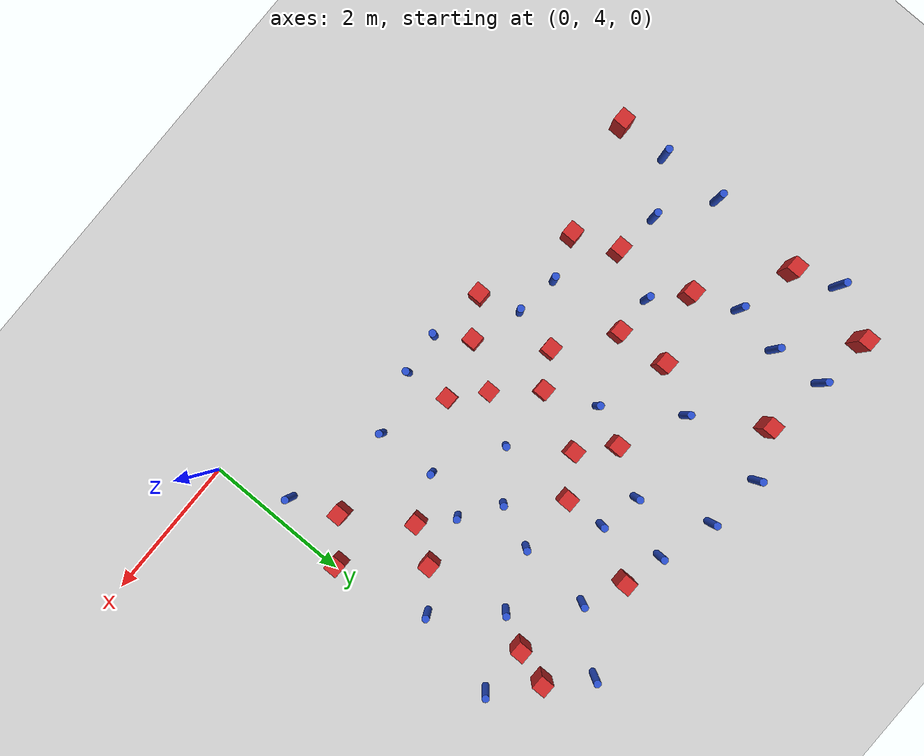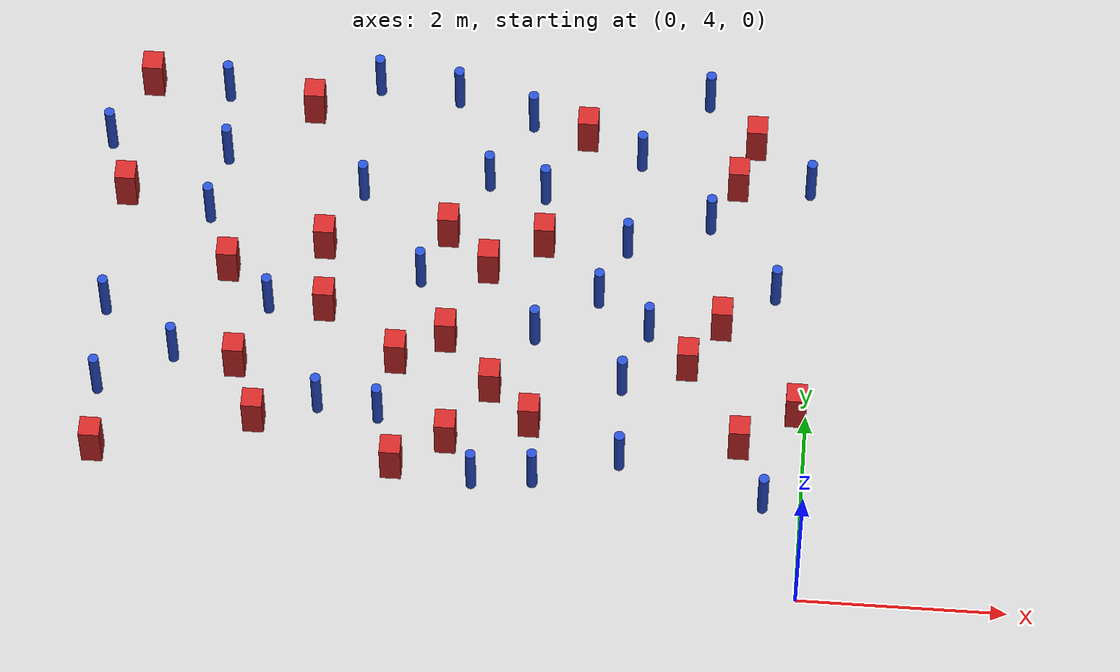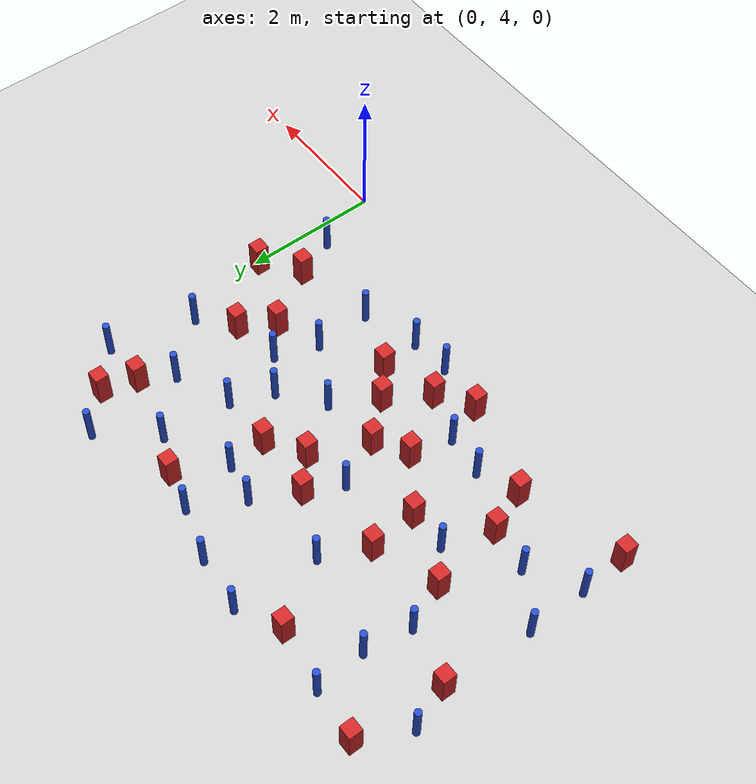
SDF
<sdf version="1.6">
 <world name="default">
  <model name="ground_plane">
   <static>1</static>
   <link name="link">
    <collision name="collision">
     <geometry><plane><normal>0 0 1</normal><size>100 100</size></plane></geometry>
     <surface><friction><ode><mu>100</mu><mu2>50</mu2></ode></friction></surface>
    </collision>
    <visual name="visual">
     <cast_shadows>0</cast_shadows>
     <geometry><plane><normal>0 0 1</normal><size>100 100</size></plane></geometry>
     <material>
      <ambient>1.0 1.0 1.0 1.0</ambient>
      <diffuse>0.8 0.8 0.8 1.0</diffuse>
      <specular>0.01 0.01 0.01 1.000000</specular>
     </material>
    </visual>
   </link>
  </model>
  <model name="pole_obstacle0">
   <static>true</static>
   <pose>-1.75917018669 5.33562779901 2.88873142074e-08 -9.90536689852e-09 4.60219948989e-07 -1.2096599496e-07</pose>
   <link name="link">
    <pose>0 0 0.3 0 -0 0</pose>
    <inertial>
     <mass>1</mass>
     <inertia><ixx>0.145833</ixx><ixy>0</ixy><ixz>0</ixz><iyy>0.145833</iyy><iyz>0</iyz><izz>0.125</izz></inertia>
    </inertial>
    <collision name="collision">
     <geometry><cylinder><radius>0.05</radius><length>.6</length></cylinder></geometry>
    </collision>
    <visual name="visual">
     <geometry><cylinder><radius>0.05</radius><length>.6</length></cylinder></geometry>
     <material>
      <script><name>Gazebo/Blue</name><uri>file://media/materials/scripts/gazebo.material</uri></script>
     </material>
    </visual>
   </link>
  </model>
  <model name="pole_obstacle1">
   <static>true</static>
   <pose>-4.70056590658 5.76526155883 2.88873142074e-08 -9.90536690842e-09 4.60219948965e-07 -1.20965994976e-07</pose>
   <link name="link">
    <pose>0 0 0.3 0 -0 0</pose>
    <inertial>
     <mass>1</mass>
     <inertia><ixx>0.145833</ixx><ixy>0</ixy><ixz>0</ixz><iyy>0.145833</iyy><iyz>0</iyz><izz>0.125</izz></inertia>
    </inertial>
    <collision name="collision">
     <geometry><cylinder><radius>0.05</radius><length>.6</length></cylinder></geometry>
    </collision>
    <visual name="visual">
     <geometry><cylinder><radius>0.05</radius><length>.6</length></cylinder></geometry>
     <material>
      <script><name>Gazebo/Blue</name><uri>file://media/materials/scripts/gazebo.material</uri></script>
     </material>
    </visual>
   </link>
  </model>
  <model name="pole_obstacle2">
   <static>true</static>
   <pose>-4.45726668055 8.1890683616 2.88873142074e-08 -9.9053668967e-09 4.60219948993e-07 -1.20965994957e-07</pose>
   <link name="link">
    <pose>0 0 0.3 0 -0 0</pose>
    <inertial>
     <mass>1</mass>
     <inertia><ixx>0.145833</ixx><ixy>0</ixy><ixz>0</ixz><iyy>0.145833</iyy><iyz>0</iyz><izz>0.125</izz></inertia>
    </inertial>
    <collision name="collision">
     <geometry><cylinder><radius>0.05</radius><length>.6</length></cylinder></geometry>
    </collision>
    <visual name="visual">
     <geometry><cylinder><radius>0.05</radius><length>.6</length></cylinder></geometry>
     <material>
      <script><name>Gazebo/Blue</name><uri>file://media/materials/scripts/gazebo.material</uri></script>
     </material>
    </visual>
   </link>
  </model>
  <model name="square_post_obstacle7">
   <static>true</static>
   <pose>-2.65024119042 5.69490103265 8.22691968438e-08 7.2212513382e-06 -7.54495500217e-07 2.29674213826e-05</pose>
   <link name="link">
    <pose>0 0 0.25 0 -0 0</pose>
    <inertial>
     <mass>100</mass>
     <inertia>
      <ixx>0.166667</ixx>
      <ixy>0</ixy>
      <ixz>0</ixz>
      <iyy>0.166667</iyy>
      <iyz>0</iyz>
      <izz>0.166667</izz>
     </inertia>
    </inertial>
    <collision name="collision"><geometry><box><size>.2 .2 .5</size></box></geometry></collision>
    <visual name="visual">
     <geometry><box><size>.2 .2 .5</size></box></geometry>
     <material>
      <script><name>Gazebo/Red</name><uri>file://media/materials/scripts/gazebo.material</uri></script>
     </material>
    </visual>
   </link>
  </model>
  <model name="square_post_obstacle9">
   <static>true</static>
   <pose>-4.78377792327 7.54915396914 8.22691968438e-08 7.22125133819e-06 -7.54495500217e-07 2.29674213826e-05</pose>
   <link name="link">
    <pose>0 0 0.25 0 -0 0</pose>
    <inertial>
     <mass>100</mass>
     <inertia>
      <ixx>0.166667</ixx>
      <ixy>0</ixy>
      <ixz>0</ixz>
      <iyy>0.166667</iyy>
      <iyz>0</iyz>
      <izz>0.166667</izz>
     </inertia>
    </inertial>
    <collision name="collision"><geometry><box><size>.2 .2 .5</size></box></geometry></collision>
    <visual name="visual">
     <geometry><box><size>.2 .2 .5</size></box></geometry>
     <material>
      <script><name>Gazebo/Red</name><uri>file://media/materials/scripts/gazebo.material</uri></script>
     </material>
    </visual>
   </link>
  </model>
  <model name="square_post_obstacle18">
   <static>true</static>
   <pose>-0.626363317901 5.59082554774 8.22691968438e-08 7.2212513382e-06 -7.54495500217e-07 2.29674213826e-05</pose>
   <link name="link">
    <pose>0 0 0.25 0 -0 0</pose>
    <inertial>
     <mass>100</mass>
     <inertia>
      <ixx>0.166667</ixx>
      <ixy>0</ixy>
      <ixz>0</ixz>
      <iyy>0.166667</iyy>
      <iyz>0</iyz>
      <izz>0.166667</izz>
     </inertia>
    </inertial>
    <collision name="collision"><geometry><box><size>.2 .2 .5</size></box></geometry></collision>
    <visual name="visual">
     <geometry><box><size>.2 .2 .5</size></box></geometry>
     <material>
      <script><name>Gazebo/Red</name><uri>file://media/materials/scripts/gazebo.material</uri></script>
     </material>
    </visual>
   </link>
  </model>
  <model name="square_post_obstacle23">
   <static>true</static>
   <pose>-3.98644663042 6.30726786794 8.22691968438e-08 7.2212513382e-06 -7.54495500217e-07 2.29674213826e-05</pose>
   <link name="link">
    <pose>0 0 0.25 0 -0 0</pose>
    <inertial>
     <mass>100</mass>
     <inertia>
      <ixx>0.166667</ixx>
      <ixy>0</ixy>
      <ixz>0</ixz>
      <iyy>0.166667</iyy>
      <iyz>0</iyz>
      <izz>0.166667</izz>
     </inertia>
    </inertial>
    <collision name="collision"><geometry><box><size>.2 .2 .5</size></box></geometry></collision>
    <visual name="visual">
     <geometry><box><size>.2 .2 .5</size></box></geometry>
     <material>
      <script><name>Gazebo/Red</name><uri>file://media/materials/scripts/gazebo.material</uri></script>
     </material>
    </visual>
   </link>
  </model>
  <model name="pole_obstacle32">
   <static>true</static>
   <pose>-6.85099173209 6.71087439909 2.88873142074e-08 -9.90536690842e-09 4.60219948965e-07 -1.20965994976e-07</pose>
   <link name="link">
    <pose>0 0 0.3 0 -0 0</pose>
    <inertial>
     <mass>1</mass>
     <inertia><ixx>0.145833</ixx><ixy>0</ixy><ixz>0</ixz><iyy>0.145833</iyy><iyz>0</iyz><izz>0.125</izz></inertia>
    </inertial>
    <collision name="collision">
     <geometry><cylinder><radius>0.05</radius><length>.6</length></cylinder></geometry>
    </collision>
    <visual name="visual">
     <geometry><cylinder><radius>0.05</radius><length>.6</length></cylinder></geometry>
     <material>
      <script><name>Gazebo/Blue</name><uri>file://media/materials/scripts/gazebo.material</uri></script>
     </material>
    </visual>
   </link>
  </model>
  <model name="pole_obstacle40">
   <static>true</static>
   <pose>-2.07064038214 7.12267521632 2.88873142074e-08 -9.90536689859e-09 4.60219948989e-07 -1.20965994961e-07</pose>
   <link name="link">
    <pose>0 0 0.3 0 -0 0</pose>
    <inertial>
     <mass>1</mass>
     <inertia><ixx>0.145833</ixx><ixy>0</ixy><ixz>0</ixz><iyy>0.145833</iyy><iyz>0</iyz><izz>0.125</izz></inertia>
    </inertial>
    <collision name="collision">
     <geometry><cylinder><radius>0.05</radius><length>.6</length></cylinder></geometry>
    </collision>
    <visual name="visual">
     <geometry><cylinder><radius>0.05</radius><length>.6</length></cylinder></geometry>
     <material>
      <script><name>Gazebo/Blue</name><uri>file://media/materials/scripts/gazebo.material</uri></script>
     </material>
    </visual>
   </link>
  </model>
  <model name="square_post_obstacle35">
   <static>true</static>
   <pose>-2.3001562882 8.96820493098 8.22691968438e-08 7.22125133819e-06 -7.54495500217e-07 2.29674213826e-05</pose>
   <link name="link">
    <pose>0 0 0.25 0 -0 0</pose>
    <inertial>
     <mass>100</mass>
     <inertia>
      <ixx>0.166667</ixx>
      <ixy>0</ixy>
      <ixz>0</ixz>
      <iyy>0.166667</iyy>
      <iyz>0</iyz>
      <izz>0.166667</izz>
     </inertia>
    </inertial>
    <collision name="collision"><geometry><box><size>.2 .2 .5</size></box></geometry></collision>
    <visual name="visual">
     <geometry><box><size>.2 .2 .5</size></box></geometry>
     <material>
      <script><name>Gazebo/Red</name><uri>file://media/materials/scripts/gazebo.material</uri></script>
     </material>
    </visual>
   </link>
  </model>
  <model name="pole_obstacle53">
   <static>true</static>
   <pose>-1.74881986015 8.71842014067 2.88873142074e-08 -9.90536690474e-09 4.60219948974e-07 -1.2096599497e-07</pose>
   <link name="link">
    <pose>0 0 0.3 0 -0 0</pose>
    <inertial>
     <mass>1</mass>
     <inertia><ixx>0.145833</ixx><ixy>0</ixy><ixz>0</ixz><iyy>0.145833</iyy><iyz>0</iyz><izz>0.125</izz></inertia>
    </inertial>
    <collision name="collision">
     <geometry><cylinder><radius>0.05</radius><length>.6</length></cylinder></geometry>
    </collision>
    <visual name="visual">
     <geometry><cylinder><radius>0.05</radius><length>.6</length></cylinder></geometry>
     <material>
      <script><name>Gazebo/Blue</name><uri>file://media/materials/scripts/gazebo.material</uri></script>
     </material>
    </visual>
   </link>
  </model>
  <model name="pole_obstacle60">
   <static>true</static>
   <pose>-4.1091775719 5.69014837534 2.88873142074e-08 -9.90536690842e-09 4.60219948965e-07 -1.20965994976e-07</pose>
   <link name="link">
    <pose>0 0 0.3 0 -0 0</pose>
    <inertial>
     <mass>1</mass>
     <inertia><ixx>0.145833</ixx><ixy>0</ixy><ixz>0</ixz><iyy>0.145833</iyy><iyz>0</iyz><izz>0.125</izz></inertia>
    </inertial>
    <collision name="collision">
     <geometry><cylinder><radius>0.05</radius><length>.6</length></cylinder></geometry>
    </collision>
    <visual name="visual">
     <geometry><cylinder><radius>0.05</radius><length>.6</length></cylinder></geometry>
     <material>
      <script><name>Gazebo/Blue</name><uri>file://media/materials/scripts/gazebo.material</uri></script>
     </material>
    </visual>
   </link>
  </model>
  <model name="square_post_obstacle46">
   <static>true</static>
   <pose>-0.0986243503936 5.98123271187 8.22691968438e-08 7.22125133819e-06 -7.54495500217e-07 2.29674213826e-05</pose>
   <link name="link">
    <pose>0 0 0.25 0 -0 0</pose>
    <inertial>
     <mass>100</mass>
     <inertia>
      <ixx>0.166667</ixx>
      <ixy>0</ixy>
      <ixz>0</ixz>
      <iyy>0.166667</iyy>
      <iyz>0</iyz>
      <izz>0.166667</izz>
     </inertia>
    </inertial>
    <collision name="collision"><geometry><box><size>.2 .2 .5</size></box></geometry></collision>
    <visual name="visual">
     <geometry><box><size>.2 .2 .5</size></box></geometry>
     <material>
      <script><name>Gazebo/Red</name><uri>file://media/materials/scripts/gazebo.material</uri></script>
     </material>
    </visual>
   </link>
  </model>
  <model name="square_post_obstacle49">
   <static>true</static>
   <pose>-5.29426202228 5.56522409303 8.22691968438e-08 7.22125133819e-06 -7.54495500217e-07 2.29674213826e-05</pose>
   <link name="link">
    <pose>0 0 0.25 0 -0 0</pose>
    <inertial>
     <mass>100</mass>
     <inertia>
      <ixx>0.166667</ixx>
      <ixy>0</ixy>
      <ixz>0</ixz>
      <iyy>0.166667</iyy>
      <iyz>0</iyz>
      <izz>0.166667</izz>
     </inertia>
    </inertial>
    <collision name="collision"><geometry><box><size>.2 .2 .5</size></box></geometry></collision>
    <visual name="visual">
     <geometry><box><size>.2 .2 .5</size></box></geometry>
     <material>
      <script><name>Gazebo/Red</name><uri>file://media/materials/scripts/gazebo.material</uri></script>
     </material>
    </visual>
   </link>
  </model>
  <model name="square_post_obstacle55">
   <static>true</static>
   <pose>-0.863269764845 6.8932168199 8.22691968438e-08 7.2212513382e-06 -7.54495500217e-07 2.29674213826e-05</pose>
   <link name="link">
    <pose>0 0 0.25 0 -0 0</pose>
    <inertial>
     <mass>100</mass>
     <inertia>
      <ixx>0.166667</ixx>
      <ixy>0</ixy>
      <ixz>0</ixz>
      <iyy>0.166667</iyy>
      <iyz>0</iyz>
      <izz>0.166667</izz>
     </inertia>
    </inertial>
    <collision name="collision"><geometry><box><size>.2 .2 .5</size></box></geometry></collision>
    <visual name="visual">
     <geometry><box><size>.2 .2 .5</size></box></geometry>
     <material>
      <script><name>Gazebo/Red</name><uri>file://media/materials/scripts/gazebo.material</uri></script>
     </material>
    </visual>
   </link>
  </model>
  <model name="pole_obstacle78">
   <static>true</static>
   <pose>-0.0754300898503 8.49925964119 2.88873142074e-08 -9.90536691075e-09 4.6021994896e-07 -1.2096599498e-07</pose>
   <link name="link">
    <pose>0 0 0.3 0 -0 0</pose>
    <inertial>
     <mass>1</mass>
     <inertia><ixx>0.145833</ixx><ixy>0</ixy><ixz>0</ixz><iyy>0.145833</iyy><iyz>0</iyz><izz>0.125</izz></inertia>
    </inertial>
    <collision name="collision">
     <geometry><cylinder><radius>0.05</radius><length>.6</length></cylinder></geometry>
    </collision>
    <visual name="visual">
     <geometry><cylinder><radius>0.05</radius><length>.6</length></cylinder></geometry>
     <material>
      <script><name>Gazebo/Blue</name><uri>file://media/materials/scripts/gazebo.material</uri></script>
     </material>
    </visual>
   </link>
  </model>
  <model name="pole_obstacle79">
   <static>true</static>
   <pose>-6.84055498075 5.82725515153 2.88873142074e-08 -9.90536690842e-09 4.60219948965e-07 -1.20965994976e-07</pose>
   <link name="link">
    <pose>0 0 0.3 0 -0 0</pose>
    <inertial>
     <mass>1</mass>
     <inertia><ixx>0.145833</ixx><ixy>0</ixy><ixz>0</ixz><iyy>0.145833</iyy><iyz>0</iyz><izz>0.125</izz></inertia>
    </inertial>
    <collision name="collision">
     <geometry><cylinder><radius>0.05</radius><length>.6</length></cylinder></geometry>
    </collision>
    <visual name="visual">
     <geometry><cylinder><radius>0.05</radius><length>.6</length></cylinder></geometry>
     <material>
      <script><name>Gazebo/Blue</name><uri>file://media/materials/scripts/gazebo.material</uri></script>
     </material>
    </visual>
   </link>
  </model>
  <model name="pole_obstacle85">
   <static>true</static>
   <pose>-3.60326174553 9.3343657157 2.88873142074e-08 -9.9053668994e-09 4.60219948987e-07 -1.20965994963e-07</pose>
   <link name="link">
    <pose>0 0 0.3 0 -0 0</pose>
    <inertial>
     <mass>1</mass>
     <inertia><ixx>0.145833</ixx><ixy>0</ixy><ixz>0</ixz><iyy>0.145833</iyy><iyz>0</iyz><izz>0.125</izz></inertia>
    </inertial>
    <collision name="collision">
     <geometry><cylinder><radius>0.05</radius><length>.6</length></cylinder></geometry>
    </collision>
    <visual name="visual">
     <geometry><cylinder><radius>0.05</radius><length>.6</length></cylinder></geometry>
     <material>
      <script><name>Gazebo/Blue</name><uri>file://media/materials/scripts/gazebo.material</uri></script>
     </material>
    </visual>
   </link>
  </model>
  <model name="square_post_obstacle79">
   <static>true</static>
   <pose>-6.64825434522 9.31912548346 8.22691968438e-08 7.22125133819e-06 -7.54495500217e-07 2.29674213826e-05</pose>
   <link name="link">
    <pose>0 0 0.25 0 -0 0</pose>
    <inertial>
     <mass>100</mass>
     <inertia>
      <ixx>0.166667</ixx>
      <ixy>0</ixy>
      <ixz>0</ixz>
      <iyy>0.166667</iyy>
      <iyz>0</iyz>
      <izz>0.166667</izz>
     </inertia>
    </inertial>
    <collision name="collision"><geometry><box><size>.2 .2 .5</size></box></geometry></collision>
    <visual name="visual">
     <geometry><box><size>.2 .2 .5</size></box></geometry>
     <material>
      <script><name>Gazebo/Red</name><uri>file://media/materials/scripts/gazebo.material</uri></script>
     </material>
    </visual>
   </link>
  </model>
  <model name="pole_obstacle90">
   <static>true</static>
   <pose>-1.78559708975 6.1630757451 2.88873142074e-08 -9.90536689852e-09 4.60219948989e-07 -1.2096599496e-07</pose>
   <link name="link">
    <pose>0 0 0.3 0 -0 0</pose>
    <inertial>
     <mass>1</mass>
     <inertia><ixx>0.145833</ixx><ixy>0</ixy><ixz>0</ixz><iyy>0.145833</iyy><iyz>0</iyz><izz>0.125</izz></inertia>
    </inertial>
    <collision name="collision">
     <geometry><cylinder><radius>0.05</radius><length>.6</length></cylinder></geometry>
    </collision>
    <visual name="visual">
     <geometry><cylinder><radius>0.05</radius><length>.6</length></cylinder></geometry>
     <material>
      <script><name>Gazebo/Blue</name><uri>file://media/materials/scripts/gazebo.material</uri></script>
     </material>
    </visual>
   </link>
  </model>
  <model name="square_post_obstacle87">
   <static>true</static>
   <pose>-0.633665543708 8.97960726958 8.22691968438e-08 7.22125133819e-06 -7.54495500217e-07 2.29674213826e-05</pose>
   <link name="link">
    <pose>0 0 0.25 0 -0 0</pose>
    <inertial>
     <mass>100</mass>
     <inertia>
      <ixx>0.166667</ixx>
      <ixy>0</ixy>
      <ixz>0</ixz>
      <iyy>0.166667</iyy>
      <iyz>0</iyz>
      <izz>0.166667</izz>
     </inertia>
    </inertial>
    <collision name="collision"><geometry><box><size>.2 .2 .5</size></box></geometry></collision>
    <visual name="visual">
     <geometry><box><size>.2 .2 .5</size></box></geometry>
     <material>
      <script><name>Gazebo/Red</name><uri>file://media/materials/scripts/gazebo.material</uri></script>
     </material>
    </visual>
   </link>
  </model>
  <model name="pole_obstacle96">
   <static>true</static>
   <pose>-6.99567342064 8.6171225161 2.88873142074e-08 -9.9053668967e-09 4.60219948993e-07 -1.20965994957e-07</pose>
   <link name="link">
    <pose>0 0 0.3 0 -0 0</pose>
    <inertial>
     <mass>1</mass>
     <inertia><ixx>0.145833</ixx><ixy>0</ixy><ixz>0</ixz><iyy>0.145833</iyy><iyz>0</iyz><izz>0.125</izz></inertia>
    </inertial>
    <collision name="collision">
     <geometry><cylinder><radius>0.05</radius><length>.6</length></cylinder></geometry>
    </collision>
    <visual name="visual">
     <geometry><cylinder><radius>0.05</radius><length>.6</length></cylinder></geometry>
     <material>
      <script><name>Gazebo/Blue</name><uri>file://media/materials/scripts/gazebo.material</uri></script>
     </material>
    </visual>
   </link>
  </model>
  <model name="pole_obstacle109">
   <static>true</static>
   <pose>-3.81880520496 7.24073774275 2.88873142074e-08 -9.90536689859e-09 4.60219948989e-07 -1.20965994961e-07</pose>
   <link name="link">
    <pose>0 0 0.3 0 -0 0</pose>
    <inertial>
     <mass>1</mass>
     <inertia><ixx>0.145833</ixx><ixy>0</ixy><ixz>0</ixz><iyy>0.145833</iyy><iyz>0</iyz><izz>0.125</izz></inertia>
    </inertial>
    <collision name="collision">
     <geometry><cylinder><radius>0.05</radius><length>.6</length></cylinder></geometry>
    </collision>
    <visual name="visual">
     <geometry><cylinder><radius>0.05</radius><length>.6</length></cylinder></geometry>
     <material>
      <script><name>Gazebo/Blue</name><uri>file://media/materials/scripts/gazebo.material</uri></script>
     </material>
    </visual>
   </link>
  </model>
  <model name="square_post_obstacle110">
   <static>true</static>
   <pose>-6.80719498051 5.14169578007 8.22691968438e-08 7.2212513382e-06 -7.54495500217e-07 2.29674213826e-05</pose>
   <link name="link">
    <pose>0 0 0.25 0 -0 0</pose>
    <inertial>
     <mass>100</mass>
     <inertia>
      <ixx>0.166667</ixx>
      <ixy>0</ixy>
      <ixz>0</ixz>
      <iyy>0.166667</iyy>
      <iyz>0</iyz>
      <izz>0.166667</izz>
     </inertia>
    </inertial>
    <collision name="collision"><geometry><box><size>.2 .2 .5</size></box></geometry></collision>
    <visual name="visual">
     <geometry><box><size>.2 .2 .5</size></box></geometry>
     <material>
      <script><name>Gazebo/Red</name><uri>file://media/materials/scripts/gazebo.material</uri></script>
     </material>
    </visual>
   </link>
  </model>
  <model name="pole_obstacle119">
   <static>true</static>
   <pose>-0.357518092427 7.27877928783 2.88873142074e-08 -9.90536689683e-09 4.60219948993e-07 -1.20965994957e-07</pose>
   <link name="link">
    <pose>0 0 0.3 0 -0 0</pose>
    <inertial>
     <mass>1</mass>
     <inertia><ixx>0.145833</ixx><ixy>0</ixy><ixz>0</ixz><iyy>0.145833</iyy><iyz>0</iyz><izz>0.125</izz></inertia>
    </inertial>
    <collision name="collision">
     <geometry><cylinder><radius>0.05</radius><length>.6</length></cylinder></geometry>
    </collision>
    <visual name="visual">
     <geometry><cylinder><radius>0.05</radius><length>.6</length></cylinder></geometry>
     <material>
      <script><name>Gazebo/Blue</name><uri>file://media/materials/scripts/gazebo.material</uri></script>
     </material>
    </visual>
   </link>
  </model>
  <model name="pole_obstacle121">
   <static>true</static>
   <pose>-2.84922909543 9.10311403551 2.88873142074e-08 -9.90536692318e-09 4.6021994893e-07 -1.20965994988e-07</pose>
   <link name="link">
    <pose>0 0 0.3 0 -0 0</pose>
    <inertial>
     <mass>1</mass>
     <inertia><ixx>0.145833</ixx><ixy>0</ixy><ixz>0</ixz><iyy>0.145833</iyy><iyz>0</iyz><izz>0.125</izz></inertia>
    </inertial>
    <collision name="collision">
     <geometry><cylinder><radius>0.05</radius><length>.6</length></cylinder></geometry>
    </collision>
    <visual name="visual">
     <geometry><cylinder><radius>0.05</radius><length>.6</length></cylinder></geometry>
     <material>
      <script><name>Gazebo/Blue</name><uri>file://media/materials/scripts/gazebo.material</uri></script>
     </material>
    </visual>
   </link>
  </model>
  <model name="square_post_obstacle121">
   <static>true</static>
   <pose>-6.77970649811 8.03047137117 8.22691968438e-08 7.22125133819e-06 -7.54495500217e-07 2.29674213826e-05</pose>
   <link name="link">
    <pose>0 0 0.25 0 -0 0</pose>
    <inertial>
     <mass>100</mass>
     <inertia>
      <ixx>0.166667</ixx>
      <ixy>0</ixy>
      <ixz>0</ixz>
      <iyy>0.166667</iyy>
      <iyz>0</iyz>
      <izz>0.166667</izz>
     </inertia>
    </inertial>
    <collision name="collision"><geometry><box><size>.2 .2 .5</size></box></geometry></collision>
    <visual name="visual">
     <geometry><box><size>.2 .2 .5</size></box></geometry>
     <material>
      <script><name>Gazebo/Red</name><uri>file://media/materials/scripts/gazebo.material</uri></script>
     </material>
    </visual>
   </link>
  </model>
  <model name="square_post_obstacle122">
   <static>true</static>
   <pose>-1.1666404802 6.42003865575 8.22691968438e-08 7.2212513382e-06 -7.54495500217e-07 2.29674213826e-05</pose>
   <link name="link">
    <pose>0 0 0.25 0 -0 0</pose>
    <inertial>
     <mass>100</mass>
     <inertia>
      <ixx>0.166667</ixx>
      <ixy>0</ixy>
      <ixz>0</ixz>
      <iyy>0.166667</iyy>
      <iyz>0</iyz>
      <izz>0.166667</izz>
     </inertia>
    </inertial>
    <collision name="collision"><geometry><box><size>.2 .2 .5</size></box></geometry></collision>
    <visual name="visual">
     <geometry><box><size>.2 .2 .5</size></box></geometry>
     <material>
      <script><name>Gazebo/Red</name><uri>file://media/materials/scripts/gazebo.material</uri></script>
     </material>
    </visual>
   </link>
  </model>
  <model name="pole_obstacle128">
   <static>true</static>
   <pose>-1.03221939965 8.03573331753 2.88873142074e-08 -9.90536689707e-09 4.60219948992e-07 -1.20965994958e-07</pose>
   <link name="link">
    <pose>0 0 0.3 0 -0 0</pose>
    <inertial>
     <mass>1</mass>
     <inertia><ixx>0.145833</ixx><ixy>0</ixy><ixz>0</ixz><iyy>0.145833</iyy><iyz>0</iyz><izz>0.125</izz></inertia>
    </inertial>
    <collision name="collision">
     <geometry><cylinder><radius>0.05</radius><length>.6</length></cylinder></geometry>
    </collision>
    <visual name="visual">
     <geometry><cylinder><radius>0.05</radius><length>.6</length></cylinder></geometry>
     <material>
      <script><name>Gazebo/Blue</name><uri>file://media/materials/scripts/gazebo.material</uri></script>
     </material>
    </visual>
   </link>
  </model>
  <model name="square_post_obstacle134">
   <static>true</static>
   <pose>-5.53364760123 6.1608161731 8.22691968438e-08 7.22125133819e-06 -7.54495500217e-07 2.29674213826e-05</pose>
   <link name="link">
    <pose>0 0 0.25 0 -0 0</pose>
    <inertial>
     <mass>100</mass>
     <inertia>
      <ixx>0.166667</ixx>
      <ixy>0</ixy>
      <ixz>0</ixz>
      <iyy>0.166667</iyy>
      <iyz>0</iyz>
      <izz>0.166667</izz>
     </inertia>
    </inertial>
    <collision name="collision"><geometry><box><size>.2 .2 .5</size></box></geometry></collision>
    <visual name="visual">
     <geometry><box><size>.2 .2 .5</size></box></geometry>
     <material>
      <script><name>Gazebo/Red</name><uri>file://media/materials/scripts/gazebo.material</uri></script>
     </material>
    </visual>
   </link>
  </model>
  <model name="square_post_obstacle135">
   <static>true</static>
   <pose>-5.02171168377 9.10797732647 8.22691968438e-08 7.22125133819e-06 -7.54495500217e-07 2.29674213826e-05</pose>
   <link name="link">
    <pose>0 0 0.25 0 -0 0</pose>
    <inertial>
     <mass>100</mass>
     <inertia>
      <ixx>0.166667</ixx>
      <ixy>0</ixy>
      <ixz>0</ixz>
      <iyy>0.166667</iyy>
      <iyz>0</iyz>
      <izz>0.166667</izz>
     </inertia>
    </inertial>
    <collision name="collision"><geometry><box><size>.2 .2 .5</size></box></geometry></collision>
    <visual name="visual">
     <geometry><box><size>.2 .2 .5</size></box></geometry>
     <material>
      <script><name>Gazebo/Red</name><uri>file://media/materials/scripts/gazebo.material</uri></script>
     </material>
    </visual>
   </link>
  </model>
  <model name="pole_obstacle144">
   <static>true</static>
   <pose>-2.57733304015 5.08893887775 2.88873142074e-08 -9.90536689859e-09 4.60219948989e-07 -1.20965994961e-07</pose>
   <link name="link">
    <pose>0 0 0.3 0 -0 0</pose>
    <inertial>
     <mass>1</mass>
     <inertia><ixx>0.145833</ixx><ixy>0</ixy><ixz>0</ixz><iyy>0.145833</iyy><iyz>0</iyz><izz>0.125</izz></inertia>
    </inertial>
    <collision name="collision">
     <geometry><cylinder><radius>0.05</radius><length>.6</length></cylinder></geometry>
    </collision>
    <visual name="visual">
     <geometry><cylinder><radius>0.05</radius><length>.6</length></cylinder></geometry>
     <material>
      <script><name>Gazebo/Blue</name><uri>file://media/materials/scripts/gazebo.material</uri></script>
     </material>
    </visual>
   </link>
  </model>
  <model name="pole_obstacle148">
   <static>true</static>
   <pose>-5.88879627955 9.24784509286 2.88873142074e-08 -9.9053668967e-09 4.60219948993e-07 -1.20965994957e-07</pose>
   <link name="link">
    <pose>0 0 0.3 0 -0 0</pose>
    <inertial>
     <mass>1</mass>
     <inertia><ixx>0.145833</ixx><ixy>0</ixy><ixz>0</ixz><iyy>0.145833</iyy><iyz>0</iyz><izz>0.125</izz></inertia>
    </inertial>
    <collision name="collision">
     <geometry><cylinder><radius>0.05</radius><length>.6</length></cylinder></geometry>
    </collision>
    <visual name="visual">
     <geometry><cylinder><radius>0.05</radius><length>.6</length></cylinder></geometry>
     <material>
      <script><name>Gazebo/Blue</name><uri>file://media/materials/scripts/gazebo.material</uri></script>
     </material>
    </visual>
   </link>
  </model>
  <model name="pole_obstacle151">
   <static>true</static>
   <pose>-1.82883433554 7.70992712427 2.88873142074e-08 -9.90536689852e-09 4.60219948989e-07 -1.2096599496e-07</pose>
   <link name="link">
    <pose>0 0 0.3 0 -0 0</pose>
    <inertial>
     <mass>1</mass>
     <inertia><ixx>0.145833</ixx><ixy>0</ixy><ixz>0</ixz><iyy>0.145833</iyy><iyz>0</iyz><izz>0.125</izz></inertia>
    </inertial>
    <collision name="collision">
     <geometry><cylinder><radius>0.05</radius><length>.6</length></cylinder></geometry>
    </collision>
    <visual name="visual">
     <geometry><cylinder><radius>0.05</radius><length>.6</length></cylinder></geometry>
     <material>
      <script><name>Gazebo/Blue</name><uri>file://media/materials/scripts/gazebo.material</uri></script>
     </material>
    </visual>
   </link>
  </model>
  <model name="square_post_obstacle151">
   <static>true</static>
   <pose>-3.16657237492 7.38236289667 8.22691968438e-08 7.2212513382e-06 -7.54495500217e-07 2.29674213826e-05</pose>
   <link name="link">
    <pose>0 0 0.25 0 -0 0</pose>
    <inertial>
     <mass>100</mass>
     <inertia>
      <ixx>0.166667</ixx>
      <ixy>0</ixy>
      <ixz>0</ixz>
      <iyy>0.166667</iyy>
      <iyz>0</iyz>
      <izz>0.166667</izz>
     </inertia>
    </inertial>
    <collision name="collision"><geometry><box><size>.2 .2 .5</size></box></geometry></collision>
    <visual name="visual">
     <geometry><box><size>.2 .2 .5</size></box></geometry>
     <material>
      <script><name>Gazebo/Red</name><uri>file://media/materials/scripts/gazebo.material</uri></script>
     </material>
    </visual>
   </link>
  </model>
  <model name="pole_obstacle156">
   <static>true</static>
   <pose>-3.15895546388 5.03902642453 2.88873142074e-08 -9.90536689859e-09 4.60219948989e-07 -1.20965994961e-07</pose>
   <link name="link">
    <pose>0 0 0.3 0 -0 0</pose>
    <inertial>
     <mass>1</mass>
     <inertia><ixx>0.145833</ixx><ixy>0</ixy><ixz>0</ixz><iyy>0.145833</iyy><iyz>0</iyz><izz>0.125</izz></inertia>
    </inertial>
    <collision name="collision">
     <geometry><cylinder><radius>0.05</radius><length>.6</length></cylinder></geometry>
    </collision>
    <visual name="visual">
     <geometry><cylinder><radius>0.05</radius><length>.6</length></cylinder></geometry>
     <material>
      <script><name>Gazebo/Blue</name><uri>file://media/materials/scripts/gazebo.material</uri></script>
     </material>
    </visual>
   </link>
  </model>
  <model name="pole_obstacle161">
   <static>true</static>
   <pose>-5.27388463891 6.83776418281 2.88873142074e-08 -9.90536690842e-09 4.60219948965e-07 -1.20965994976e-07</pose>
   <link name="link">
    <pose>0 0 0.3 0 -0 0</pose>
    <inertial>
     <mass>1</mass>
     <inertia><ixx>0.145833</ixx><ixy>0</ixy><ixz>0</ixz><iyy>0.145833</iyy><iyz>0</iyz><izz>0.125</izz></inertia>
    </inertial>
    <collision name="collision">
     <geometry><cylinder><radius>0.05</radius><length>.6</length></cylinder></geometry>
    </collision>
    <visual name="visual">
     <geometry><cylinder><radius>0.05</radius><length>.6</length></cylinder></geometry>
     <material>
      <script><name>Gazebo/Blue</name><uri>file://media/materials/scripts/gazebo.material</uri></script>
     </material>
    </visual>
   </link>
  </model>
  <model name="square_post_obstacle158">
   <static>true</static>
   <pose>-4.7254408535 6.84420127502 8.22691968438e-08 7.2212513382e-06 -7.54495500217e-07 2.29674213826e-05</pose>
   <link name="link">
    <pose>0 0 0.25 0 -0 0</pose>
    <inertial>
     <mass>100</mass>
     <inertia>
      <ixx>0.166667</ixx>
      <ixy>0</ixy>
      <ixz>0</ixz>
      <iyy>0.166667</iyy>
      <iyz>0</iyz>
      <izz>0.166667</izz>
     </inertia>
    </inertial>
    <collision name="collision"><geometry><box><size>.2 .2 .5</size></box></geometry></collision>
    <visual name="visual">
     <geometry><box><size>.2 .2 .5</size></box></geometry>
     <material>
      <script><name>Gazebo/Red</name><uri>file://media/materials/scripts/gazebo.material</uri></script>
     </material>
    </visual>
   </link>
  </model>
  <model name="square_post_obstacle159">
   <static>true</static>
   <pose>-3.93337377976 5.15037894838 8.22691968438e-08 7.2212513382e-06 -7.54495500217e-07 2.29674213826e-05</pose>
   <link name="link">
    <pose>0 0 0.25 0 -0 0</pose>
    <inertial>
     <mass>100</mass>
     <inertia>
      <ixx>0.166667</ixx>
      <ixy>0</ixy>
      <ixz>0</ixz>
      <iyy>0.166667</iyy>
      <iyz>0</iyz>
      <izz>0.166667</izz>
     </inertia>
    </inertial>
    <collision name="collision"><geometry><box><size>.2 .2 .5</size></box></geometry></collision>
    <visual name="visual">
     <geometry><box><size>.2 .2 .5</size></box></geometry>
     <material>
      <script><name>Gazebo/Red</name><uri>file://media/materials/scripts/gazebo.material</uri></script>
     </material>
    </visual>
   </link>
  </model>
  <model name="pole_obstacle166">
   <static>true</static>
   <pose>-1.56329853799 6.77745800762 2.88873142074e-08 -9.90536689852e-09 4.60219948989e-07 -1.2096599496e-07</pose>
   <link name="link">
    <pose>0 0 0.3 0 -0 0</pose>
    <inertial>
     <mass>1</mass>
     <inertia><ixx>0.145833</ixx><ixy>0</ixy><ixz>0</ixz><iyy>0.145833</iyy><iyz>0</iyz><izz>0.125</izz></inertia>
    </inertial>
    <collision name="collision">
     <geometry><cylinder><radius>0.05</radius><length>.6</length></cylinder></geometry>
    </collision>
    <visual name="visual">
     <geometry><cylinder><radius>0.05</radius><length>.6</length></cylinder></geometry>
     <material>
      <script><name>Gazebo/Blue</name><uri>file://media/materials/scripts/gazebo.material</uri></script>
     </material>
    </visual>
   </link>
  </model>
  <model name="square_post_obstacle169">
   <static>true</static>
   <pose>-3.5234649263 6.57785279907 8.22691968438e-08 7.2212513382e-06 -7.54495500217e-07 2.29674213826e-05</pose>
   <link name="link">
    <pose>0 0 0.25 0 -0 0</pose>
    <inertial>
     <mass>100</mass>
     <inertia>
      <ixx>0.166667</ixx>
      <ixy>0</ixy>
      <ixz>0</ixz>
      <iyy>0.166667</iyy>
      <iyz>0</iyz>
      <izz>0.166667</izz>
     </inertia>
    </inertial>
    <collision name="collision"><geometry><box><size>.2 .2 .5</size></box></geometry></collision>
    <visual name="visual">
     <geometry><box><size>.2 .2 .5</size></box></geometry>
     <material>
      <script><name>Gazebo/Red</name><uri>file://media/materials/scripts/gazebo.material</uri></script>
     </material>
    </visual>
   </link>
  </model>
  <model name="square_post_obstacle171">
   <static>true</static>
   <pose>-3.43543205383 5.46275647431 8.22691968438e-08 7.2212513382e-06 -7.54495500217e-07 2.29674213826e-05</pose>
   <link name="link">
    <pose>0 0 0.25 0 -0 0</pose>
    <inertial>
     <mass>100</mass>
     <inertia>
      <ixx>0.166667</ixx>
      <ixy>0</ixy>
      <ixz>0</ixz>
      <iyy>0.166667</iyy>
      <iyz>0</iyz>
      <izz>0.166667</izz>
     </inertia>
    </inertial>
    <collision name="collision"><geometry><box><size>.2 .2 .5</size></box></geometry></collision>
    <visual name="visual">
     <geometry><box><size>.2 .2 .5</size></box></geometry>
     <material>
      <script><name>Gazebo/Red</name><uri>file://media/materials/scripts/gazebo.material</uri></script>
     </material>
    </visual>
   </link>
  </model>
  <model name="pole_obstacle170">
   <static>true</static>
   <pose>-5.94434462782 7.83000102218 2.88873142074e-08 -9.90536690842e-09 4.60219948965e-07 -1.20965994976e-07</pose>
   <link name="link">
    <pose>0 0 0.3 0 -0 0</pose>
    <inertial>
     <mass>1</mass>
     <inertia><ixx>0.145833</ixx><ixy>0</ixy><ixz>0</ixz><iyy>0.145833</iyy><iyz>0</iyz><izz>0.125</izz></inertia>
    </inertial>
    <collision name="collision">
     <geometry><cylinder><radius>0.05</radius><length>.6</length></cylinder></geometry>
    </collision>
    <visual name="visual">
     <geometry><cylinder><radius>0.05</radius><length>.6</length></cylinder></geometry>
     <material>
      <script><name>Gazebo/Blue</name><uri>file://media/materials/scripts/gazebo.material</uri></script>
     </material>
    </visual>
   </link>
  </model>
  <model name="pole_obstacle171">
   <static>true</static>
   <pose>-3.23071059827 8.38258548651 2.88873142074e-08 -9.90536692318e-09 4.6021994893e-07 -1.20965994988e-07</pose>
   <link name="link">
    <pose>0 0 0.3 0 -0 0</pose>
    <inertial>
     <mass>1</mass>
     <inertia><ixx>0.145833</ixx><ixy>0</ixy><ixz>0</ixz><iyy>0.145833</iyy><iyz>0</iyz><izz>0.125</izz></inertia>
    </inertial>
    <collision name="collision">
     <geometry><cylinder><radius>0.05</radius><length>.6</length></cylinder></geometry>
    </collision>
    <visual name="visual">
     <geometry><cylinder><radius>0.05</radius><length>.6</length></cylinder></geometry>
     <material>
      <script><name>Gazebo/Blue</name><uri>file://media/materials/scripts/gazebo.material</uri></script>
     </material>
    </visual>
   </link>
  </model>
  <model name="pole_obstacle178">
   <static>true</static>
   <pose>-0.36497799276 4.96717922535 2.88873142074e-08 -9.90536689683e-09 4.60219948993e-07 -1.20965994957e-07</pose>
   <link name="link">
    <pose>0 0 0.3 0 -0 0</pose>
    <inertial>
     <mass>1</mass>
     <inertia><ixx>0.145833</ixx><ixy>0</ixy><ixz>0</ixz><iyy>0.145833</iyy><iyz>0</iyz><izz>0.125</izz></inertia>
    </inertial>
    <collision name="collision">
     <geometry><cylinder><radius>0.05</radius><length>.6</length></cylinder></geometry>
    </collision>
    <visual name="visual">
     <geometry><cylinder><radius>0.05</radius><length>.6</length></cylinder></geometry>
     <material>
      <script><name>Gazebo/Blue</name><uri>file://media/materials/scripts/gazebo.material</uri></script>
     </material>
    </visual>
   </link>
  </model>
  <model name="square_post_obstacle180">
   <static>true</static>
   <pose>-3.58841822023 7.76721874363 8.22691968438e-08 7.2212513382e-06 -7.54495500217e-07 2.29674213826e-05</pose>
   <link name="link">
    <pose>0 0 0.25 0 -0 0</pose>
    <inertial>
     <mass>100</mass>
     <inertia>
      <ixx>0.166667</ixx>
      <ixy>0</ixy>
      <ixz>0</ixz>
      <iyy>0.166667</iyy>
      <iyz>0</iyz>
      <izz>0.166667</izz>
     </inertia>
    </inertial>
    <collision name="collision"><geometry><box><size>.2 .2 .5</size></box></geometry></collision>
    <visual name="visual">
     <geometry><box><size>.2 .2 .5</size></box></geometry>
     <material>
      <script><name>Gazebo/Red</name><uri>file://media/materials/scripts/gazebo.material</uri></script>
     </material>
    </visual>
   </link>
  </model>
  <model name="pole_obstacle181">
   <static>true</static>
   <pose>-6.14090937436 6.23228649485 2.88873142074e-08 -9.90536690842e-09 4.60219948965e-07 -1.20965994976e-07</pose>
   <link name="link">
    <pose>0 0 0.3 0 -0 0</pose>
    <inertial>
     <mass>1</mass>
     <inertia><ixx>0.145833</ixx><ixy>0</ixy><ixz>0</ixz><iyy>0.145833</iyy><iyz>0</iyz><izz>0.125</izz></inertia>
    </inertial>
    <collision name="collision">
     <geometry><cylinder><radius>0.05</radius><length>.6</length></cylinder></geometry>
    </collision>
    <visual name="visual">
     <geometry><cylinder><radius>0.05</radius><length>.6</length></cylinder></geometry>
     <material>
      <script><name>Gazebo/Blue</name><uri>file://media/materials/scripts/gazebo.material</uri></script>
     </material>
    </visual>
   </link>
  </model>
  <model name="square_post_obstacle182">
   <static>true</static>
   <pose>-5.70135522954 7.22874398735 8.22691968438e-08 7.2212513382e-06 -7.54495500217e-07 2.29674213826e-05</pose>
   <link name="link">
    <pose>0 0 0.25 0 -0 0</pose>
    <inertial>
     <mass>100</mass>
     <inertia>
      <ixx>0.166667</ixx>
      <ixy>0</ixy>
      <ixz>0</ixz>
      <iyy>0.166667</iyy>
      <iyz>0</iyz>
      <izz>0.166667</izz>
     </inertia>
    </inertial>
    <collision name="collision"><geometry><box><size>.2 .2 .5</size></box></geometry></collision>
    <visual name="visual">
     <geometry><box><size>.2 .2 .5</size></box></geometry>
     <material>
      <script><name>Gazebo/Red</name><uri>file://media/materials/scripts/gazebo.material</uri></script>
     </material>
    </visual>
   </link>
  </model>
  <model name="pole_obstacle190">
   <static>true</static>
   <pose>-2.67329177547 8.26739339475 2.88873142074e-08 -9.90536692318e-09 4.6021994893e-07 -1.20965994988e-07</pose>
   <link name="link">
    <pose>0 0 0.3 0 -0 0</pose>
    <inertial>
     <mass>1</mass>
     <inertia><ixx>0.145833</ixx><ixy>0</ixy><ixz>0</ixz><iyy>0.145833</iyy><iyz>0</iyz><izz>0.125</izz></inertia>
    </inertial>
    <collision name="collision">
     <geometry><cylinder><radius>0.05</radius><length>.6</length></cylinder></geometry>
    </collision>
    <visual name="visual">
     <geometry><cylinder><radius>0.05</radius><length>.6</length></cylinder></geometry>
     <material>
      <script><name>Gazebo/Blue</name><uri>file://media/materials/scripts/gazebo.material</uri></script>
     </material>
    </visual>
   </link>
  </model>
  <model name="square_post_obstacle204">
   <static>true</static>
   <pose>-3.05470731704 6.05216518585 8.22691968438e-08 7.2212513382e-06 -7.54495500217e-07 2.29674213826e-05</pose>
   <link name="link">
    <pose>0 0 0.25 0 -0 0</pose>
    <inertial>
     <mass>100</mass>
     <inertia>
      <ixx>0.166667</ixx>
      <ixy>0</ixy>
      <ixz>0</ixz>
      <iyy>0.166667</iyy>
      <iyz>0</iyz>
      <izz>0.166667</izz>
     </inertia>
    </inertial>
    <collision name="collision"><geometry><box><size>.2 .2 .5</size></box></geometry></collision>
    <visual name="visual">
     <geometry><box><size>.2 .2 .5</size></box></geometry>
     <material>
      <script><name>Gazebo/Red</name><uri>file://media/materials/scripts/gazebo.material</uri></script>
     </material>
    </visual>
   </link>
  </model>
  <model name="square_post_obstacle208">
   <static>true</static>
   <pose>-0.786215852413 8.49122851576 8.22691968438e-08 7.22125133819e-06 -7.54495500217e-07 2.29674213826e-05</pose>
   <link name="link">
    <pose>0 0 0.25 0 -0 0</pose>
    <inertial>
     <mass>100</mass>
     <inertia>
      <ixx>0.166667</ixx>
      <ixy>0</ixy>
      <ixz>0</ixz>
      <iyy>0.166667</iyy>
      <iyz>0</iyz>
      <izz>0.166667</izz>
     </inertia>
    </inertial>
    <collision name="collision"><geometry><box><size>.2 .2 .5</size></box></geometry></collision>
    <visual name="visual">
     <geometry><box><size>.2 .2 .5</size></box></geometry>
     <material>
      <script><name>Gazebo/Red</name><uri>file://media/materials/scripts/gazebo.material</uri></script>
     </material>
    </visual>
   </link>
  </model>
  <model name="pole_obstacle195">
   <static>true</static>
   <pose>-2.66373780088 6.66745047433 2.88873142074e-08 -9.90536689859e-09 4.60219948989e-07 -1.20965994961e-07</pose>
   <link name="link">
    <pose>0 0 0.3 0 -0 0</pose>
    <inertial>
     <mass>1</mass>
     <inertia><ixx>0.145833</ixx><ixy>0</ixy><ixz>0</ixz><iyy>0.145833</iyy><iyz>0</iyz><izz>0.125</izz></inertia>
    </inertial>
    <collision name="collision">
     <geometry><cylinder><radius>0.05</radius><length>.6</length></cylinder></geometry>
    </collision>
    <visual name="visual">
     <geometry><cylinder><radius>0.05</radius><length>.6</length></cylinder></geometry>
     <material>
      <script><name>Gazebo/Blue</name><uri>file://media/materials/scripts/gazebo.material</uri></script>
     </material>
    </visual>
   </link>
  </model>
  <model name="pole_obstacle205">
   <static>true</static>
   <pose>-1.11979737691 9.45477285255 2.88873142074e-08 -9.90536690474e-09 4.60219948974e-07 -1.2096599497e-07</pose>
   <link name="link">
    <pose>0 0 0.3 0 -0 0</pose>
    <inertial>
     <mass>1</mass>
     <inertia><ixx>0.145833</ixx><ixy>0</ixy><ixz>0</ixz><iyy>0.145833</iyy><iyz>0</iyz><izz>0.125</izz></inertia>
    </inertial>
    <collision name="collision">
     <geometry><cylinder><radius>0.05</radius><length>.6</length></cylinder></geometry>
    </collision>
    <visual name="visual">
     <geometry><cylinder><radius>0.05</radius><length>.6</length></cylinder></geometry>
     <material>
      <script><name>Gazebo/Blue</name><uri>file://media/materials/scripts/gazebo.material</uri></script>
     </material>
    </visual>
   </link>
  </model>
  <model name="square_post_obstacle209">
   <static>true</static>
   <pose>-2.64603990619 7.71639265575 8.22691968438e-08 7.2212513382e-06 -7.54495500217e-07 2.29674213826e-05</pose>
   <link name="link">
    <pose>0 0 0.25 0 -0 0</pose>
    <inertial>
     <mass>100</mass>
     <inertia>
      <ixx>0.166667</ixx>
      <ixy>0</ixy>
      <ixz>0</ixz>
      <iyy>0.166667</iyy>
      <iyz>0</iyz>
      <izz>0.166667</izz>
     </inertia>
    </inertial>
    <collision name="collision"><geometry><box><size>.2 .2 .5</size></box></geometry></collision>
    <visual name="visual">
     <geometry><box><size>.2 .2 .5</size></box></geometry>
     <material>
      <script><name>Gazebo/Red</name><uri>file://media/materials/scripts/gazebo.material</uri></script>
     </material>
    </visual>
   </link>
  </model>
  <model name="pole_obstacle215">
   <static>true</static>
   <pose>-4.39622999087 9.42234002041 2.88873142074e-08 -9.9053668967e-09 4.60219948993e-07 -1.20965994957e-07</pose>
   <link name="link">
    <pose>0 0 0.3 0 -0 0</pose>
    <inertial>
     <mass>1</mass>
     <inertia><ixx>0.145833</ixx><ixy>0</ixy><ixz>0</ixz><iyy>0.145833</iyy><iyz>0</iyz><izz>0.125</izz></inertia>
    </inertial>
    <collision name="collision">
     <geometry><cylinder><radius>0.05</radius><length>.6</length></cylinder></geometry>
    </collision>
    <visual name="visual">
     <geometry><cylinder><radius>0.05</radius><length>.6</length></cylinder></geometry>
     <material>
      <script><name>Gazebo/Blue</name><uri>file://media/materials/scripts/gazebo.material</uri></script>
     </material>
    </visual>
   </link>
  </model>
  <model name="pole_obstacle222">
   <static>true</static>
   <pose>-5.83266999087 8.51164002041 2.88873142074e-08 -9.9053668967e-09 4.60219948993e-07 -1.20965994957e-07</pose>
   <link name="link">
    <pose>0 0 0.3 0 -0 0</pose>
    <inertial>
     <mass>1</mass>
     <inertia><ixx>0.145833</ixx><ixy>0</ixy><ixz>0</ixz><iyy>0.145833</iyy><iyz>0</iyz><izz>0.125</izz></inertia>
    </inertial>
    <collision name="collision">
     <geometry><cylinder><radius>0.05</radius><length>.6</length></cylinder></geometry>
    </collision>
    <visual name="visual">
     <geometry><cylinder><radius>0.05</radius><length>.6</length></cylinder></geometry>
     <material>
      <script><name>Gazebo/Blue</name><uri>file://media/materials/scripts/gazebo.material</uri></script>
     </material>
    </visual>
   </link>
  </model>
 </world>
</sdf>
